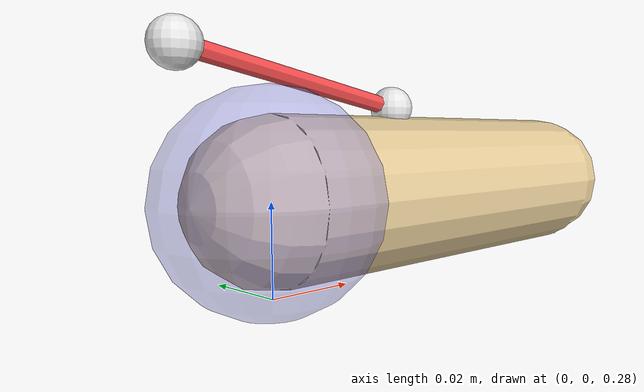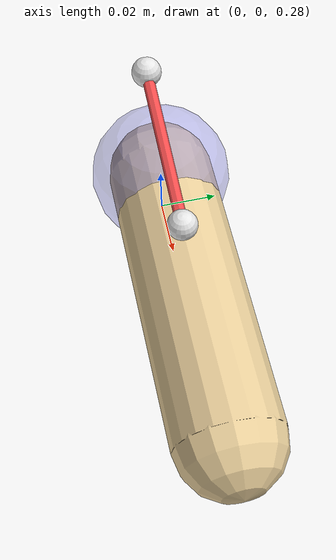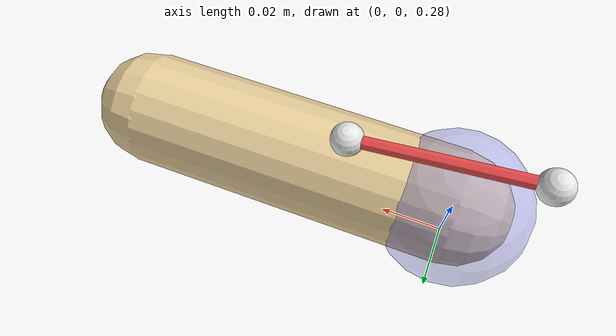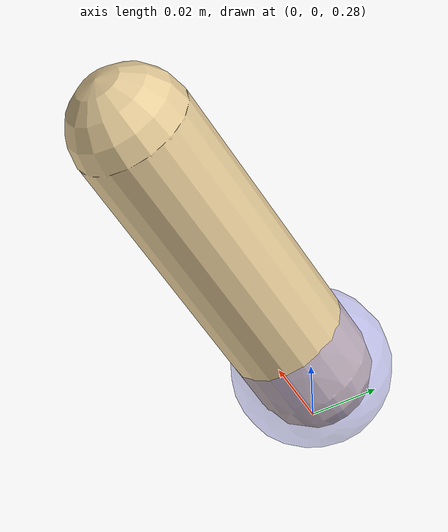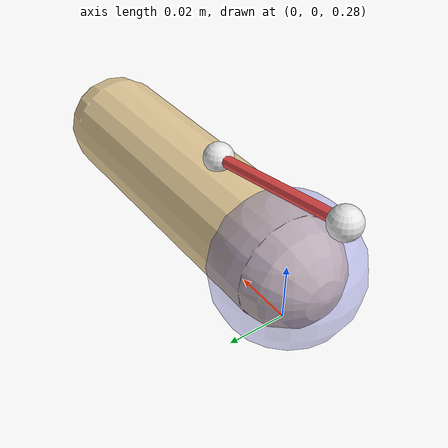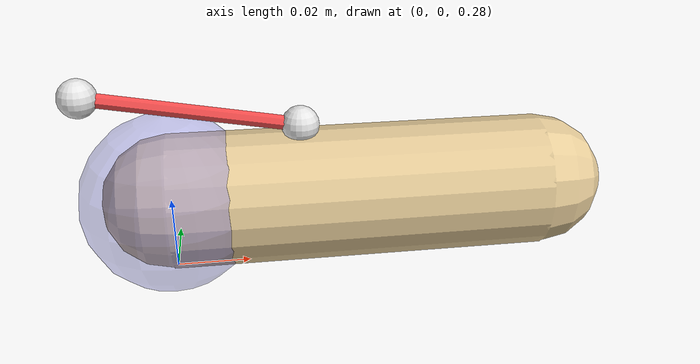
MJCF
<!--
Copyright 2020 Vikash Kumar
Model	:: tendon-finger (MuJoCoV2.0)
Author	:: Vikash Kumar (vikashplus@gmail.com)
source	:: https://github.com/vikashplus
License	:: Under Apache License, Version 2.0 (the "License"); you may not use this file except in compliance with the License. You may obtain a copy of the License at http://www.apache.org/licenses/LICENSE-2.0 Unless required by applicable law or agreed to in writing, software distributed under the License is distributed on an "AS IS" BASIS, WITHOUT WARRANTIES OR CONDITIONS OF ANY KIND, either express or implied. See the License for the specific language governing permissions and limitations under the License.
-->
<mujoco model="tendon-finger">

	<default>
		<geom rgba=".9 .8 .6 1" size="0.01"/>
		<site type="sphere" rgba=".9 .9 .9 1" size="0.005"/>
		<joint type="hinge" axis="0 1 0" damping=".1" armature="0.01" limited="true" range="0 60" solimplimit="0.95 0.95 0.1"/>
		<default class="muscle">
			<muscle ctrllimited="true" ctrlrange="0 1" scale="10000"></muscle>
		</default>
	</default>

	<visual>
		<headlight diffuse=".9 .9 .9"/>
	</visual>

	<worldbody>
		<geom type="plane" size="1 1 1" rgba=".2 .3 .2 1"/>

		<!-- BASE -->
		<site name="bs3" pos="-0.02 0.00 0.33"/>

		<!-- link -->
		<body name="proximal">
			<geom type="capsule" fromto="0 0 0.3 0.1 0 0.3" size=".018"/>
			<geom name="pg1" type="sphere" pos="0.0 0.0 0.3" size="0.024" rgba=".5 .5 .9 .4"/>
			<joint name="IFmcp" pos="0 0 0.3" axis="0 1 0" range="-25 60"/>
			<site name="ps3" pos="0.035 0.00 0.32"/>
		</body>
	</worldbody>

	<tendon>
		<spatial name="extn" width="0.002" rgba=".95 .3 .3 1" limited="true" range="0 0.33">
			<site site="bs3"/>
			<geom geom="pg1"/>
			<site site="ps3"/>
		</spatial>
	</tendon>
</mujoco>
